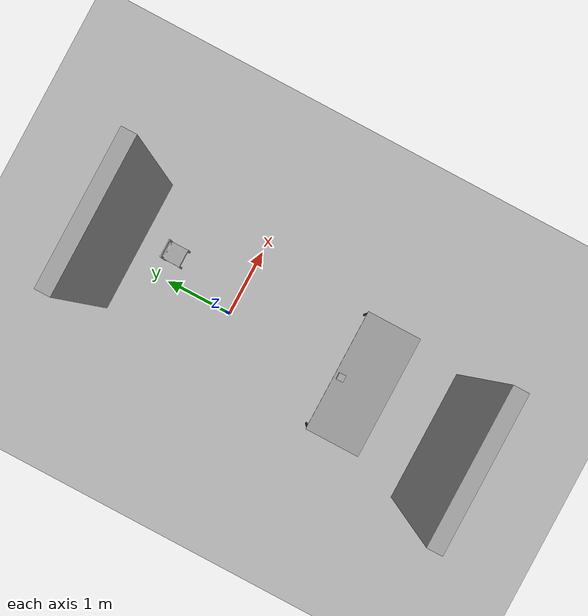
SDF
<sdf version="1.6">
 <world name="default">
  <light name="sun" type="directional">
   <pose>0 0 10 0 -0 0</pose>
   <diffuse>0.8 0.8 0.8 1</diffuse>
   <specular>0.2 0.2 0.2 1</specular>
   <attenuation>
    <range>1000</range>
    <constant>0.9</constant>
    <linear>0.01</linear>
    <quadratic>0.001</quadratic>
   </attenuation>
   <direction>-0.5 0.1 -0.9</direction>
  </light>
  <model name="ground_plane">
   <static>1</static>
   <link name="link">
    <collision name="collision">
     <geometry><plane><normal>0 0 1</normal><size>100 100</size></plane></geometry>
     <surface><friction><ode><mu>100</mu><mu2>50</mu2></ode></friction></surface>
    </collision>
    <visual name="visual">
     <cast_shadows>0</cast_shadows>
     <geometry><plane><normal>0 0 1</normal><size>100 100</size></plane></geometry>
     <material>
      <script><uri>file://media/materials/scripts/gazebo.material</uri><name>Gazebo/Grey</name></script>
     </material>
    </visual>
   </link>
  </model>
  <gravity>0 0 -9.8</gravity>
  <magnetic_field>6e-06 2.3e-05 -4.2e-05</magnetic_field>
  <atmosphere type="adiabatic"/>
  <physics name="default_physics" default="0" type="ode">
   <max_step_size>0.001</max_step_size>
   <real_time_factor>1</real_time_factor>
   <real_time_update_rate>1000</real_time_update_rate>
  </physics>
  <scene><ambient>0.4 0.4 0.4 1</ambient><background>0.7 0.7 0.7 1</background><shadows>1</shadows></scene>
  <spherical_coordinates>
   <surface_model>EARTH_WGS84</surface_model>
   <latitude_deg>0</latitude_deg>
   <longitude_deg>0</longitude_deg>
   <elevation>0</elevation>
   <heading_deg>0</heading_deg>
  </spherical_coordinates>
  <model name="WallTile">
   <static>1</static>
   <link name="WallTile">
    <collision name="collision">
     <geometry><mesh><uri>model://WallTile/WallTile.dae</uri></mesh></geometry>
    </collision>
    <visual name="vis">
     <cast_shadows>0</cast_shadows>
     <geometry><mesh><uri>model://WallTile/WallTile.dae</uri></mesh></geometry>
     <material>
      <script><uri>file://Media/materials/scripts/iai-office.material</uri><name>IAI/OfficeWall</name></script>
     </material>
    </visual>
   </link>
   <pose>-0.22639 -3.38153 -0 0 -0 0</pose>
  </model>
  <model name="BigTable">
   <static>1</static>
   <link name="BigTable">
    <collision name="collision">
     <geometry><mesh><uri>model://BigTable/BigTable.dae</uri></mesh></geometry>
    </collision>
    <visual name="vis">
     <cast_shadows>0</cast_shadows>
     <geometry><mesh><uri>model://BigTable/BigTable.dae</uri></mesh></geometry>
    </visual>
   </link>
   <pose>0.01615 -2.08869 0 0 -0 0</pose>
  </model>
  <model name="Chair">
   <static>1</static>
   <link name="Chair">
    <collision name="collision"><geometry><mesh><uri>model://Chair/Chair.dae</uri></mesh></geometry></collision>
    <visual name="vis">
     <cast_shadows>0</cast_shadows>
     <geometry><mesh><uri>model://Chair/Chair.dae</uri></mesh></geometry>
    </visual>
   </link>
   <pose>0.379914 1.04875 0 0 -0 0</pose>
  </model>
  <model name="WallTile_0">
   <static>1</static>
   <link name="WallTile">
    <collision name="collision">
     <geometry><mesh><uri>model://WallTile/WallTile.dae</uri></mesh></geometry>
    </collision>
    <visual name="vis">
     <cast_shadows>0</cast_shadows>
     <geometry><mesh><uri>model://WallTile/WallTile.dae</uri></mesh></geometry>
     <material>
      <script><uri>file://Media/materials/scripts/iai-office.material</uri><name>IAI/OfficeWall</name></script>
     </material>
    </visual>
   </link>
   <pose>0.244504 1.68928 0 0 -0 0</pose>
  </model>
  <model name="camera">
   <pose>-0.045515 -1.77702 0.774999 0 -0 1.59895</pose>
   <link name="link">
    <inertial>
     <mass>0.1</mass>
     <inertia>
      <ixx>0.000166667</ixx>
      <iyy>0.000166667</iyy>
      <izz>0.000166667</izz>
      <ixy>0</ixy>
      <ixz>0</ixz>
      <iyz>0</iyz>
     </inertia>
    </inertial>
    <collision name="collision"><geometry><box><size>0.1 0.1 0.1</size></box></geometry></collision>
    <visual name="visual"><geometry><box><size>0.1 0.1 0.1</size></box></geometry></visual>
    <sensor name="camera" type="camera">
     <camera name="__default__">
      <horizontal_fov>1.047</horizontal_fov>
      <image><width>320</width><height>240</height></image>
      <clip><near>0.1</near><far>100</far></clip>
     </camera>
     <plugin name="camera_controller" filename="libgazebo_ros_camera.so">
      <always_on>true</always_on>
      <update_rate>30.0</update_rate>
      <cameraName>usb_cam</cameraName>
      <imageTopicName>image_raw</imageTopicName>
      <cameraInfoTopicname>camera_info</cameraInfoTopicname>
      <frameName>camera_link</frameName>
      <hackBaseLine>0.07</hackBaseLine>
      <distortionK1>0.0</distortionK1>
      <distortionK2>0.0</distortionK2>
      <distortionK3>0.0</distortionK3>
      <distortionT1>0.0</distortionT1>
      <distortionT2>0.0</distortionT2>
     </plugin>
     <visualize>1</visualize>
    </sensor>
   </link>
  </model>
 </world>
</sdf>
